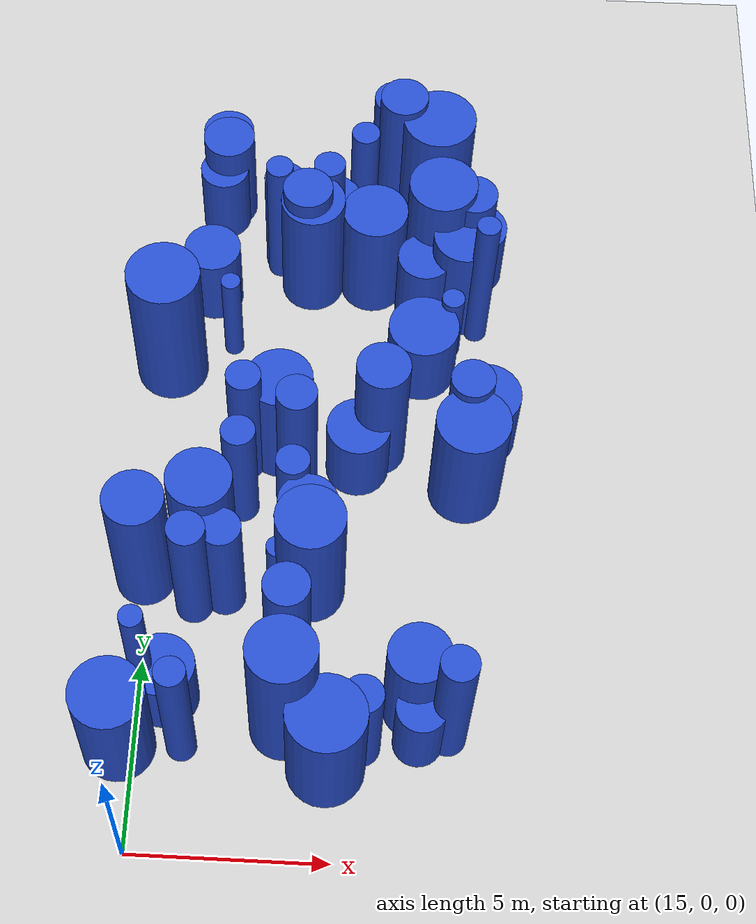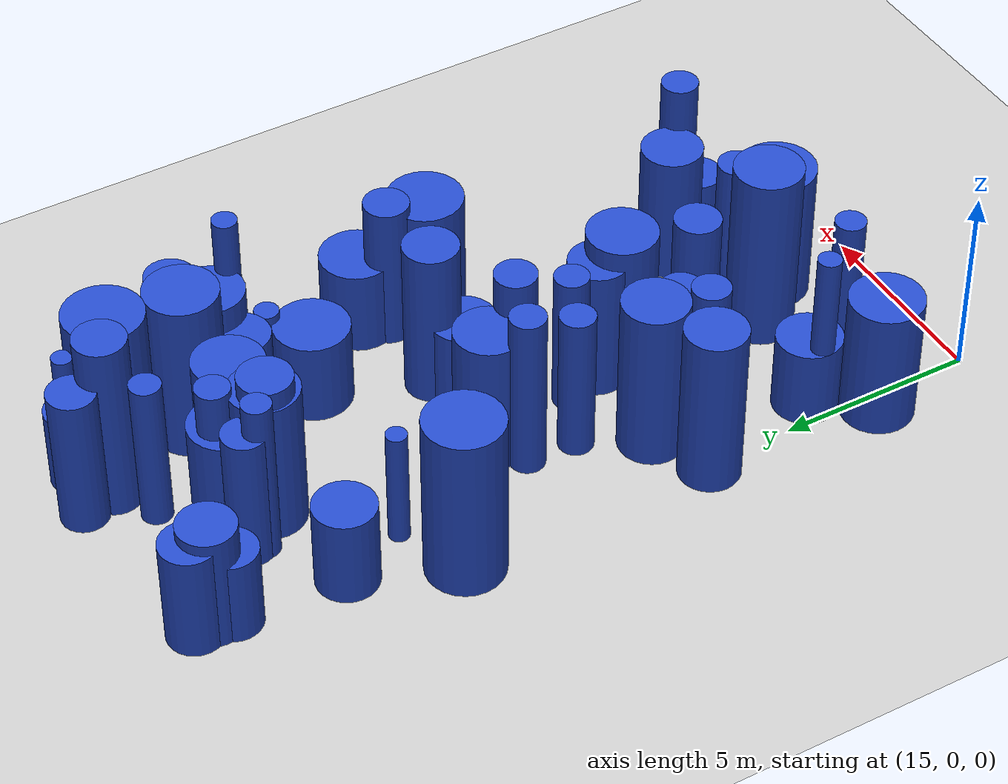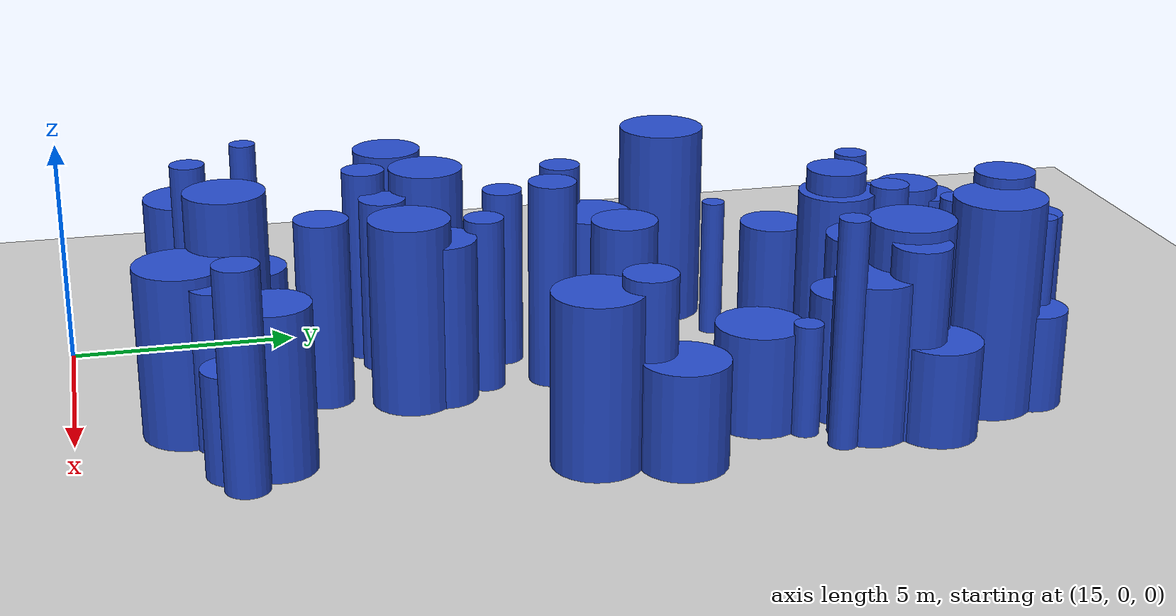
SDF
<sdf version="1.6">
 <world name="default">
  <model name="ground_plane">
   <static>1</static>
   <link name="link">
    <collision name="collision">
     <geometry><plane><normal>0 0 1</normal><size>100 100</size></plane></geometry>
     <surface><friction><ode><mu>100</mu><mu2>50</mu2></ode></friction></surface>
    </collision>
    <visual name="visual">
     <cast_shadows>0</cast_shadows>
     <geometry><plane><normal>0 0 1</normal><size>100 100</size></plane></geometry>
     <material>
      <script><uri>file://media/materials/scripts/gazebo.material</uri><name>Gazebo/Grey</name></script>
     </material>
    </visual>
   </link>
  </model>
  <model name="1">
   <static>0</static>
   <link name="link">
    <inertial>
     <mass>2</mass>
     <inertia>
      <ixx>1.04273</ixx>
      <ixy>0</ixy>
      <ixz>0</ixz>
      <iyy>1.04273</iyy>
      <iyz>0</iyz>
      <izz>0.0959348</izz>
     </inertia>
    </inertial>
    <collision name="collision">
     <geometry><cylinder><length>2.44307</length><radius>0.309734</radius></cylinder></geometry>
     <surface><contact><collide_without_contact>1</collide_without_contact></contact></surface>
    </collision>
    <visual name="visual">
     <geometry><cylinder><length>2.44307</length><radius>0.309734</radius></cylinder></geometry>
     <material>
      <script><uri>file://media/materials/scripts/gazebo.material</uri><name>Gazebo/Blue</name></script>
     </material>
    </visual>
    <gravity>0</gravity>
   </link>
   <pose>22.6289 14.9061 1.22153 0 -0 0</pose>
  </model>
  <model name="2">
   <static>0</static>
   <link name="link">
    <inertial>
     <mass>2</mass>
     <inertia><ixx>2.4592</ixx><ixy>0</ixy><ixz>0</ixz><iyy>2.4592</iyy><iyz>0</iyz><izz>0.847323</izz></inertia>
    </inertial>
    <collision name="collision">
     <geometry><cylinder><length>3.49474</length><radius>0.920501</radius></cylinder></geometry>
     <surface><contact><collide_without_contact>1</collide_without_contact></contact></surface>
    </collision>
    <visual name="visual">
     <geometry><cylinder><length>3.49474</length><radius>0.920501</radius></cylinder></geometry>
     <material>
      <script><uri>file://media/materials/scripts/gazebo.material</uri><name>Gazebo/Blue</name></script>
     </material>
    </visual>
    <gravity>0</gravity>
   </link>
   <pose>14.6339 2.72103 1.74737 0 -0 0</pose>
  </model>
  <model name="17">
   <static>0</static>
   <link name="link">
    <inertial>
     <mass>2</mass>
     <inertia><ixx>2.1683</ixx><ixy>0</ixy><ixz>0</ixz><iyy>2.1683</iyy><iyz>0</iyz><izz>0.244924</izz></inertia>
    </inertial>
    <collision name="collision">
     <geometry><cylinder><length>3.50357</length><radius>0.494898</radius></cylinder></geometry>
     <surface><contact><collide_without_contact>1</collide_without_contact></contact></surface>
    </collision>
    <visual name="visual">
     <geometry><cylinder><length>3.50357</length><radius>0.494898</radius></cylinder></geometry>
     <material>
      <script><uri>file://media/materials/scripts/gazebo.material</uri><name>Gazebo/Blue</name></script>
     </material>
    </visual>
    <gravity>0</gravity>
   </link>
   <pose>20.5912 2.97204 1.75179 0 -0 0</pose>
  </model>
  <model name="28">
   <static>0</static>
   <link name="link">
    <inertial>
     <mass>2</mass>
     <inertia><ixx>4.33046</ixx><ixy>0</ixy><ixz>0</ixz><iyy>4.33046</iyy><iyz>0</iyz><izz>0.751665</izz></inertia>
    </inertial>
    <collision name="collision">
     <geometry><cylinder><length>4.87112</length><radius>0.866986</radius></cylinder></geometry>
     <surface><contact><collide_without_contact>1</collide_without_contact></contact></surface>
    </collision>
    <visual name="visual">
     <geometry><cylinder><length>4.87112</length><radius>0.866986</radius></cylinder></geometry>
     <material>
      <script><uri>file://media/materials/scripts/gazebo.material</uri><name>Gazebo/Blue</name></script>
     </material>
    </visual>
    <gravity>0</gravity>
   </link>
   <pose>18.6765 3.41081 2.43556 0 -0 0</pose>
  </model>
  <model name="36">
   <static>0</static>
   <link name="link">
    <inertial>
     <mass>2</mass>
     <inertia><ixx>2.47359</ixx><ixy>0</ixy><ixz>0</ixz><iyy>2.47359</iyy><iyz>0</iyz><izz>0.571806</izz></inertia>
    </inertial>
    <collision name="collision">
     <geometry><cylinder><length>3.623</length><radius>0.756179</radius></cylinder></geometry>
     <surface><contact><collide_without_contact>1</collide_without_contact></contact></surface>
    </collision>
    <visual name="visual">
     <geometry><cylinder><length>3.623</length><radius>0.756179</radius></cylinder></geometry>
     <material>
      <script><uri>file://media/materials/scripts/gazebo.material</uri><name>Gazebo/Blue</name></script>
     </material>
    </visual>
    <gravity>0</gravity>
   </link>
   <pose>19.0534 7.89403 1.8115 0 -0 0</pose>
  </model>
  <model name="46">
   <static>0</static>
   <link name="link">
    <inertial>
     <mass>2</mass>
     <inertia><ixx>4.24125</ixx><ixy>0</ixy><ixz>0</ixz><iyy>4.24125</iyy><iyz>0</iyz><izz>0.418546</izz></inertia>
    </inertial>
    <collision name="collision">
     <geometry><cylinder><length>4.91852</length><radius>0.646951</radius></cylinder></geometry>
     <surface><contact><collide_without_contact>1</collide_without_contact></contact></surface>
    </collision>
    <visual name="visual">
     <geometry><cylinder><length>4.91852</length><radius>0.646951</radius></cylinder></geometry>
     <material>
      <script><uri>file://media/materials/scripts/gazebo.material</uri><name>Gazebo/Blue</name></script>
     </material>
    </visual>
    <gravity>0</gravity>
   </link>
   <pose>21.0936 19.7391 2.45926 0 -0 0</pose>
  </model>
  <model name="48">
   <static>0</static>
   <link name="link">
    <inertial>
     <mass>2</mass>
     <inertia><ixx>3.38207</ixx><ixy>0</ixy><ixz>0</ixz><iyy>3.38207</iyy><iyz>0</iyz><izz>0.486769</izz></inertia>
    </inertial>
    <collision name="collision">
     <geometry><cylinder><length>4.3396</length><radius>0.697689</radius></cylinder></geometry>
     <surface><contact><collide_without_contact>1</collide_without_contact></contact></surface>
    </collision>
    <visual name="visual">
     <geometry><cylinder><length>4.3396</length><radius>0.697689</radius></cylinder></geometry>
     <material>
      <script><uri>file://media/materials/scripts/gazebo.material</uri><name>Gazebo/Blue</name></script>
     </material>
    </visual>
    <gravity>0</gravity>
   </link>
   <pose>20.7865 11.4476 2.1698 0 -0 0</pose>
  </model>
  <model name="78">
   <static>0</static>
   <link name="link">
    <inertial>
     <mass>2</mass>
     <inertia>
      <ixx>1.00668</ixx>
      <ixy>0</ixy>
      <ixz>0</ixz>
      <iyy>1.00668</iyy>
      <iyz>0</iyz>
      <izz>0.0862787</izz>
     </inertia>
    </inertial>
    <collision name="collision">
     <geometry><cylinder><length>2.40442</length><radius>0.293732</radius></cylinder></geometry>
     <surface><contact><collide_without_contact>1</collide_without_contact></contact></surface>
    </collision>
    <visual name="visual">
     <geometry><cylinder><length>2.40442</length><radius>0.293732</radius></cylinder></geometry>
     <material>
      <script><uri>file://media/materials/scripts/gazebo.material</uri><name>Gazebo/Blue</name></script>
     </material>
    </visual>
    <gravity>0</gravity>
   </link>
   <pose>18.3294 7.23147 1.20221 0 -0 0</pose>
  </model>
  <model name="84">
   <static>0</static>
   <link name="link">
    <inertial>
     <mass>2</mass>
     <inertia><ixx>3.64044</ixx><ixy>0</ixy><ixz>0</ixz><iyy>3.64044</iyy><iyz>0</iyz><izz>0.277497</izz></inertia>
    </inertial>
    <collision name="collision">
     <geometry><cylinder><length>4.58368</length><radius>0.52678</radius></cylinder></geometry>
     <surface><contact><collide_without_contact>1</collide_without_contact></contact></surface>
    </collision>
    <visual name="visual">
     <geometry><cylinder><length>4.58368</length><radius>0.52678</radius></cylinder></geometry>
     <material>
      <script><uri>file://media/materials/scripts/gazebo.material</uri><name>Gazebo/Blue</name></script>
     </material>
    </visual>
    <gravity>0</gravity>
   </link>
   <pose>18.6475 10.4009 2.29184 0 -0 0</pose>
  </model>
  <model name="89">
   <static>0</static>
   <link name="link">
    <inertial>
     <mass>2</mass>
     <inertia><ixx>2.96796</ixx><ixy>0</ixy><ixz>0</ixz><iyy>2.96796</iyy><iyz>0</iyz><izz>0.745612</izz></inertia>
    </inertial>
    <collision name="collision">
     <geometry><cylinder><length>3.946</length><radius>0.863488</radius></cylinder></geometry>
     <surface><contact><collide_without_contact>1</collide_without_contact></contact></surface>
    </collision>
    <visual name="visual">
     <geometry><cylinder><length>3.946</length><radius>0.863488</radius></cylinder></geometry>
     <material>
      <script><uri>file://media/materials/scripts/gazebo.material</uri><name>Gazebo/Blue</name></script>
     </material>
    </visual>
    <gravity>0</gravity>
   </link>
   <pose>18.7498 16.8816 1.973 0 -0 0</pose>
  </model>
  <model name="102">
   <static>0</static>
   <link name="link">
    <inertial>
     <mass>2</mass>
     <inertia><ixx>3.54806</ixx><ixy>0</ixy><ixz>0</ixz><iyy>3.54806</iyy><iyz>0</iyz><izz>0.691929</izz></inertia>
    </inertial>
    <collision name="collision">
     <geometry><cylinder><length>4.38322</length><radius>0.831823</radius></cylinder></geometry>
     <surface><contact><collide_without_contact>1</collide_without_contact></contact></surface>
    </collision>
    <visual name="visual">
     <geometry><cylinder><length>4.38322</length><radius>0.831823</radius></cylinder></geometry>
     <material>
      <script><uri>file://media/materials/scripts/gazebo.material</uri><name>Gazebo/Blue</name></script>
     </material>
    </visual>
    <gravity>0</gravity>
   </link>
   <pose>16.3981 7.99857 2.19161 0 -0 0</pose>
  </model>
  <model name="109">
   <static>0</static>
   <link name="link">
    <inertial>
     <mass>2</mass>
     <inertia><ixx>2.37827</ixx><ixy>0</ixy><ixz>0</ixz><iyy>2.37827</iyy><iyz>0</iyz><izz>0.30273</izz></inertia>
    </inertial>
    <collision name="collision">
     <geometry><cylinder><length>3.65533</length><radius>0.550209</radius></cylinder></geometry>
     <surface><contact><collide_without_contact>1</collide_without_contact></contact></surface>
    </collision>
    <visual name="visual">
     <geometry><cylinder><length>3.65533</length><radius>0.550209</radius></cylinder></geometry>
     <material>
      <script><uri>file://media/materials/scripts/gazebo.material</uri><name>Gazebo/Blue</name></script>
     </material>
    </visual>
    <gravity>0</gravity>
   </link>
   <pose>17.9244 17.8043 1.82767 0 -0 0</pose>
  </model>
  <model name="116">
   <static>0</static>
   <link name="link">
    <inertial>
     <mass>2</mass>
     <inertia><ixx>3.48936</ixx><ixy>0</ixy><ixz>0</ixz><iyy>3.48936</iyy><iyz>0</iyz><izz>0.443704</izz></inertia>
    </inertial>
    <collision name="collision">
     <geometry><cylinder><length>4.42776</length><radius>0.666111</radius></cylinder></geometry>
     <surface><contact><collide_without_contact>1</collide_without_contact></contact></surface>
    </collision>
    <visual name="visual">
     <geometry><cylinder><length>4.42776</length><radius>0.666111</radius></cylinder></geometry>
     <material>
      <script><uri>file://media/materials/scripts/gazebo.material</uri><name>Gazebo/Blue</name></script>
     </material>
    </visual>
    <gravity>0</gravity>
   </link>
   <pose>18.6073 16.8956 2.21388 0 -0 0</pose>
  </model>
  <model name="131">
   <static>0</static>
   <link name="link">
    <inertial>
     <mass>2</mass>
     <inertia><ixx>3.06232</ixx><ixy>0</ixy><ixz>0</ixz><iyy>3.06232</iyy><iyz>0</iyz><izz>0.387296</izz></inertia>
    </inertial>
    <collision name="collision">
     <geometry><cylinder><length>4.14874</length><radius>0.622331</radius></cylinder></geometry>
     <surface><contact><collide_without_contact>1</collide_without_contact></contact></surface>
    </collision>
    <visual name="visual">
     <geometry><cylinder><length>4.14874</length><radius>0.622331</radius></cylinder></geometry>
     <material>
      <script><uri>file://media/materials/scripts/gazebo.material</uri><name>Gazebo/Blue</name></script>
     </material>
    </visual>
    <gravity>0</gravity>
   </link>
   <pose>23.0565 17.1107 2.07437 0 -0 0</pose>
  </model>
  <model name="135">
   <static>0</static>
   <link name="link">
    <inertial>
     <mass>2</mass>
     <inertia><ixx>3.25624</ixx><ixy>0</ixy><ixz>0</ixz><iyy>3.25624</iyy><iyz>0</iyz><izz>0.78546</izz></inertia>
    </inertial>
    <collision name="collision">
     <geometry><cylinder><length>4.14501</length><radius>0.886262</radius></cylinder></geometry>
     <surface><contact><collide_without_contact>1</collide_without_contact></contact></surface>
    </collision>
    <visual name="visual">
     <geometry><cylinder><length>4.14501</length><radius>0.886262</radius></cylinder></geometry>
     <material>
      <script><uri>file://media/materials/scripts/gazebo.material</uri><name>Gazebo/Blue</name></script>
     </material>
    </visual>
    <gravity>0</gravity>
   </link>
   <pose>19.1514 7.19176 2.0725 0 -0 0</pose>
  </model>
  <model name="146">
   <static>0</static>
   <link name="link">
    <inertial>
     <mass>2</mass>
     <inertia><ixx>1.31435</ixx><ixy>0</ixy><ixz>0</ixz><iyy>1.31435</iyy><iyz>0</iyz><izz>0.872518</izz></inertia>
    </inertial>
    <collision name="collision">
     <geometry><cylinder><length>2.29533</length><radius>0.934087</radius></cylinder></geometry>
     <surface><contact><collide_without_contact>1</collide_without_contact></contact></surface>
    </collision>
    <visual name="visual">
     <geometry><cylinder><length>2.29533</length><radius>0.934087</radius></cylinder></geometry>
     <material>
      <script><uri>file://media/materials/scripts/gazebo.material</uri><name>Gazebo/Blue</name></script>
     </material>
    </visual>
    <gravity>0</gravity>
   </link>
   <pose>23.5244 12.0109 1.14766 0 -0 0</pose>
  </model>
  <model name="159">
   <static>0</static>
   <link name="link">
    <inertial>
     <mass>2</mass>
     <inertia><ixx>3.53942</ixx><ixy>0</ixy><ixz>0</ixz><iyy>3.53942</iyy><iyz>0</iyz><izz>0.596226</izz></inertia>
    </inertial>
    <collision name="collision">
     <geometry><cylinder><length>4.40997</length><radius>0.772157</radius></cylinder></geometry>
     <surface><contact><collide_without_contact>1</collide_without_contact></contact></surface>
    </collision>
    <visual name="visual">
     <geometry><cylinder><length>4.40997</length><radius>0.772157</radius></cylinder></geometry>
     <material>
      <script><uri>file://media/materials/scripts/gazebo.material</uri><name>Gazebo/Blue</name></script>
     </material>
    </visual>
    <gravity>0</gravity>
   </link>
   <pose>14.8704 7.34621 2.20499 0 -0 0</pose>
  </model>
  <model name="162">
   <static>0</static>
   <link name="link">
    <inertial>
     <mass>2</mass>
     <inertia><ixx>2.99816</ixx><ixy>0</ixy><ixz>0</ixz><iyy>2.99816</iyy><iyz>0</iyz><izz>0.344422</izz></inertia>
    </inertial>
    <collision name="collision">
     <geometry><cylinder><length>4.11773</length><radius>0.586875</radius></cylinder></geometry>
     <surface><contact><collide_without_contact>1</collide_without_contact></contact></surface>
    </collision>
    <visual name="visual">
     <geometry><cylinder><length>4.11773</length><radius>0.586875</radius></cylinder></geometry>
     <material>
      <script><uri>file://media/materials/scripts/gazebo.material</uri><name>Gazebo/Blue</name></script>
     </material>
    </visual>
    <gravity>0</gravity>
   </link>
   <pose>18.6722 5.38973 2.05886 0 -0 0</pose>
  </model>
  <model name="184">
   <static>0</static>
   <link name="link">
    <inertial>
     <mass>2</mass>
     <inertia><ixx>3.81968</ixx><ixy>0</ixy><ixz>0</ixz><iyy>3.81968</iyy><iyz>0</iyz><izz>0.146862</izz></inertia>
    </inertial>
    <collision name="collision">
     <geometry><cylinder><length>4.74104</length><radius>0.383226</radius></cylinder></geometry>
     <surface><contact><collide_without_contact>1</collide_without_contact></contact></surface>
    </collision>
    <visual name="visual">
     <geometry><cylinder><length>4.74104</length><radius>0.383226</radius></cylinder></geometry>
     <material>
      <script><uri>file://media/materials/scripts/gazebo.material</uri><name>Gazebo/Blue</name></script>
     </material>
    </visual>
    <gravity>0</gravity>
   </link>
   <pose>16.1818 2.78422 2.37052 0 -0 0</pose>
  </model>
  <model name="185">
   <static>0</static>
   <link name="link">
    <inertial>
     <mass>2</mass>
     <inertia><ixx>3.27841</ixx><ixy>0</ixy><ixz>0</ixz><iyy>3.27841</iyy><iyz>0</iyz><izz>0.230123</izz></inertia>
    </inertial>
    <collision name="collision">
     <geometry><cylinder><length>4.35662</length><radius>0.479711</radius></cylinder></geometry>
     <surface><contact><collide_without_contact>1</collide_without_contact></contact></surface>
    </collision>
    <visual name="visual">
     <geometry><cylinder><length>4.35662</length><radius>0.479711</radius></cylinder></geometry>
     <material>
      <script><uri>file://media/materials/scripts/gazebo.material</uri><name>Gazebo/Blue</name></script>
     </material>
    </visual>
    <gravity>0</gravity>
   </link>
   <pose>16.1941 6.6207 2.17831 0 -0 0</pose>
  </model>
  <model name="197">
   <static>0</static>
   <link name="link">
    <inertial>
     <mass>2</mass>
     <inertia><ixx>2.40664</ixx><ixy>0</ixy><ixz>0</ixz><iyy>2.40664</iyy><iyz>0</iyz><izz>0.612438</izz></inertia>
    </inertial>
    <collision name="collision">
     <geometry><cylinder><length>3.55</length><radius>0.782584</radius></cylinder></geometry>
     <surface><contact><collide_without_contact>1</collide_without_contact></contact></surface>
    </collision>
    <visual name="visual">
     <geometry><cylinder><length>3.55</length><radius>0.782584</radius></cylinder></geometry>
     <material>
      <script><uri>file://media/materials/scripts/gazebo.material</uri><name>Gazebo/Blue</name></script>
     </material>
    </visual>
    <gravity>0</gravity>
   </link>
   <pose>21.8757 4.04784 1.775 0 -0 0</pose>
  </model>
  <model name="200">
   <static>0</static>
   <link name="link">
    <inertial>
     <mass>2</mass>
     <inertia><ixx>2.63983</ixx><ixy>0</ixy><ixz>0</ixz><iyy>2.63983</iyy><iyz>0</iyz><izz>0.354115</izz></inertia>
    </inertial>
    <collision name="collision">
     <geometry><cylinder><length>3.84404</length><radius>0.595075</radius></cylinder></geometry>
     <surface><contact><collide_without_contact>1</collide_without_contact></contact></surface>
    </collision>
    <visual name="visual">
     <geometry><cylinder><length>3.84404</length><radius>0.595075</radius></cylinder></geometry>
     <material>
      <script><uri>file://media/materials/scripts/gazebo.material</uri><name>Gazebo/Blue</name></script>
     </material>
    </visual>
    <gravity>0</gravity>
   </link>
   <pose>20.8837 20.6261 1.92202 0 -0 0</pose>
  </model>
  <model name="203">
   <static>0</static>
   <link name="link">
    <inertial>
     <mass>2</mass>
     <inertia><ixx>3.50185</ixx><ixy>0</ixy><ixz>0</ixz><iyy>3.50185</iyy><iyz>0</iyz><izz>0.202633</izz></inertia>
    </inertial>
    <collision name="collision">
     <geometry><cylinder><length>4.51699</length><radius>0.450148</radius></cylinder></geometry>
     <surface><contact><collide_without_contact>1</collide_without_contact></contact></surface>
    </collision>
    <visual name="visual">
     <geometry><cylinder><length>4.51699</length><radius>0.450148</radius></cylinder></geometry>
     <material>
      <script><uri>file://media/materials/scripts/gazebo.material</uri><name>Gazebo/Blue</name></script>
     </material>
    </visual>
    <gravity>0</gravity>
   </link>
   <pose>17.2866 10.877 2.2585 0 -0 0</pose>
  </model>
  <model name="211">
   <static>0</static>
   <link name="link">
    <inertial>
     <mass>2</mass>
     <inertia><ixx>2.75737</ixx><ixy>0</ixy><ixz>0</ixz><iyy>2.75737</iyy><iyz>0</iyz><izz>0.919582</izz></inertia>
    </inertial>
    <collision name="collision">
     <geometry><cylinder><length>3.71288</length><radius>0.958948</radius></cylinder></geometry>
     <surface><contact><collide_without_contact>1</collide_without_contact></contact></surface>
    </collision>
    <visual name="visual">
     <geometry><cylinder><length>3.71288</length><radius>0.958948</radius></cylinder></geometry>
     <material>
      <script><uri>file://media/materials/scripts/gazebo.material</uri><name>Gazebo/Blue</name></script>
     </material>
    </visual>
    <gravity>0</gravity>
   </link>
   <pose>23.0966 10.3226 1.85644 0 -0 0</pose>
  </model>
  <model name="221">
   <static>0</static>
   <link name="link">
    <inertial>
     <mass>2</mass>
     <inertia><ixx>1.21578</ixx><ixy>0</ixy><ixz>0</ixz><iyy>1.21578</iyy><iyz>0</iyz><izz>0.593038</izz></inertia>
    </inertial>
    <collision name="collision">
     <geometry><cylinder><length>2.34852</length><radius>0.77009</radius></cylinder></geometry>
     <surface><contact><collide_without_contact>1</collide_without_contact></contact></surface>
    </collision>
    <visual name="visual">
     <geometry><cylinder><length>2.34852</length><radius>0.77009</radius></cylinder></geometry>
     <material>
      <script><uri>file://media/materials/scripts/gazebo.material</uri><name>Gazebo/Blue</name></script>
     </material>
    </visual>
    <gravity>0</gravity>
   </link>
   <pose>16.0104 16.3521 1.17426 0 -0 0</pose>
  </model>
  <model name="222">
   <static>0</static>
   <link name="link">
    <inertial>
     <mass>2</mass>
     <inertia><ixx>2.69581</ixx><ixy>0</ixy><ixz>0</ixz><iyy>2.69581</iyy><iyz>0</iyz><izz>0.271882</izz></inertia>
    </inertial>
    <collision name="collision">
     <geometry><cylinder><length>3.91908</length><radius>0.521424</radius></cylinder></geometry>
     <surface><contact><collide_without_contact>1</collide_without_contact></contact></surface>
    </collision>
    <visual name="visual">
     <geometry><cylinder><length>3.91908</length><radius>0.521424</radius></cylinder></geometry>
     <material>
      <script><uri>file://media/materials/scripts/gazebo.material</uri><name>Gazebo/Blue</name></script>
     </material>
    </visual>
    <gravity>0</gravity>
   </link>
   <pose>16.9786 6.92828 1.95954 0 -0 0</pose>
  </model>
  <model name="229">
   <static>0</static>
   <link name="link">
    <inertial>
     <mass>2</mass>
     <inertia><ixx>3.64642</ixx><ixy>0</ixy><ixz>0</ixz><iyy>3.64642</iyy><iyz>0</iyz><izz>0.841675</izz></inertia>
    </inertial>
    <collision name="collision">
     <geometry><cylinder><length>4.39926</length><radius>0.917428</radius></cylinder></geometry>
     <surface><contact><collide_without_contact>1</collide_without_contact></contact></surface>
    </collision>
    <visual name="visual">
     <geometry><cylinder><length>4.39926</length><radius>0.917428</radius></cylinder></geometry>
     <material>
      <script><uri>file://media/materials/scripts/gazebo.material</uri><name>Gazebo/Blue</name></script>
     </material>
    </visual>
    <gravity>0</gravity>
   </link>
   <pose>22.2146 17.2205 2.19963 0 -0 0</pose>
  </model>
  <model name="231">
   <static>0</static>
   <link name="link">
    <inertial>
     <mass>2</mass>
     <inertia><ixx>2.80087</ixx><ixy>0</ixy><ixz>0</ixz><iyy>2.80087</iyy><iyz>0</iyz><izz>0.964922</izz></inertia>
    </inertial>
    <collision name="collision">
     <geometry><cylinder><length>3.72967</length><radius>0.982305</radius></cylinder></geometry>
     <surface><contact><collide_without_contact>1</collide_without_contact></contact></surface>
    </collision>
    <visual name="visual">
     <geometry><cylinder><length>3.72967</length><radius>0.982305</radius></cylinder></geometry>
     <material>
      <script><uri>file://media/materials/scripts/gazebo.material</uri><name>Gazebo/Blue</name></script>
     </material>
    </visual>
    <gravity>0</gravity>
   </link>
   <pose>19.7493 2.37563 1.86484 0 -0 0</pose>
  </model>
  <model name="232">
   <static>0</static>
   <link name="link">
    <inertial>
     <mass>2</mass>
     <inertia><ixx>1.18005</ixx><ixy>0</ixy><ixz>0</ixz><iyy>1.18005</iyy><iyz>0</iyz><izz>0.704491</izz></inertia>
    </inertial>
    <collision name="collision">
     <geometry><cylinder><length>2.22864</length><radius>0.83934</radius></cylinder></geometry>
     <surface><contact><collide_without_contact>1</collide_without_contact></contact></surface>
    </collision>
    <visual name="visual">
     <geometry><cylinder><length>2.22864</length><radius>0.83934</radius></cylinder></geometry>
     <material>
      <script><uri>file://media/materials/scripts/gazebo.material</uri><name>Gazebo/Blue</name></script>
     </material>
    </visual>
    <gravity>0</gravity>
   </link>
   <pose>20.225 10.9114 1.11432 0 -0 0</pose>
  </model>
  <model name="234">
   <static>0</static>
   <link name="link">
    <inertial>
     <mass>2</mass>
     <inertia><ixx>2.80496</ixx><ixy>0</ixy><ixz>0</ixz><iyy>2.80496</iyy><iyz>0</iyz><izz>0.14818</izz></inertia>
    </inertial>
    <collision name="collision">
     <geometry><cylinder><length>4.04787</length><radius>0.384941</radius></cylinder></geometry>
     <surface><contact><collide_without_contact>1</collide_without_contact></contact></surface>
    </collision>
    <visual name="visual">
     <geometry><cylinder><length>4.04787</length><radius>0.384941</radius></cylinder></geometry>
     <material>
      <script><uri>file://media/materials/scripts/gazebo.material</uri><name>Gazebo/Blue</name></script>
     </material>
    </visual>
    <gravity>0</gravity>
   </link>
   <pose>20.0865 19.1662 2.02393 0 -0 0</pose>
  </model>
  <model name="239">
   <static>0</static>
   <link name="link">
    <inertial>
     <mass>2</mass>
     <inertia><ixx>1.81074</ixx><ixy>0</ixy><ixz>0</ixz><iyy>1.81074</iyy><iyz>0</iyz><izz>0.834126</izz></inertia>
    </inertial>
    <collision name="collision">
     <geometry><cylinder><length>2.89172</length><radius>0.913305</radius></cylinder></geometry>
     <surface><contact><collide_without_contact>1</collide_without_contact></contact></surface>
    </collision>
    <visual name="visual">
     <geometry><cylinder><length>2.89172</length><radius>0.913305</radius></cylinder></geometry>
     <material>
      <script><uri>file://media/materials/scripts/gazebo.material</uri><name>Gazebo/Blue</name></script>
     </material>
    </visual>
    <gravity>0</gravity>
   </link>
   <pose>19.1789 17.686 1.44586 0 -0 0</pose>
  </model>
  <model name="244">
   <static>0</static>
   <link name="link">
    <inertial>
     <mass>2</mass>
     <inertia>
      <ixx>3.94036</ixx>
      <ixy>0</ixy>
      <ixz>0</ixz>
      <iyy>3.94036</iyy>
      <iyz>0</iyz>
      <izz>0.0854119</izz>
     </inertia>
    </inertial>
    <collision name="collision">
     <geometry><cylinder><length>4.8359</length><radius>0.292253</radius></cylinder></geometry>
     <surface><contact><collide_without_contact>1</collide_without_contact></contact></surface>
    </collision>
    <visual name="visual">
     <geometry><cylinder><length>4.8359</length><radius>0.292253</radius></cylinder></geometry>
     <material>
      <script><uri>file://media/materials/scripts/gazebo.material</uri><name>Gazebo/Blue</name></script>
     </material>
    </visual>
    <gravity>0</gravity>
   </link>
   <pose>15.1859 4.06259 2.41795 0 -0 0</pose>
  </model>
  <model name="261">
   <static>0</static>
   <link name="link">
    <inertial>
     <mass>2</mass>
     <inertia><ixx>2.39094</ixx><ixy>0</ixy><ixz>0</ixz><iyy>2.39094</iyy><iyz>0</iyz><izz>0.740881</izz></inertia>
    </inertial>
    <collision name="collision">
     <geometry><cylinder><length>3.48181</length><radius>0.860744</radius></cylinder></geometry>
     <surface><contact><collide_without_contact>1</collide_without_contact></contact></surface>
    </collision>
    <visual name="visual">
     <geometry><cylinder><length>3.48181</length><radius>0.860744</radius></cylinder></geometry>
     <material>
      <script><uri>file://media/materials/scripts/gazebo.material</uri><name>Gazebo/Blue</name></script>
     </material>
    </visual>
    <gravity>0</gravity>
   </link>
   <pose>22.8787 16.2167 1.74091 0 -0 0</pose>
  </model>
  <model name="263">
   <static>0</static>
   <link name="link">
    <inertial>
     <mass>2</mass>
     <inertia><ixx>3.93842</ixx><ixy>0</ixy><ixz>0</ixz><iyy>3.93842</iyy><iyz>0</iyz><izz>0.948666</izz></inertia>
    </inertial>
    <collision name="collision">
     <geometry><cylinder><length>4.559</length><radius>0.973995</radius></cylinder></geometry>
     <surface><contact><collide_without_contact>1</collide_without_contact></contact></surface>
    </collision>
    <visual name="visual">
     <geometry><cylinder><length>4.559</length><radius>0.973995</radius></cylinder></geometry>
     <material>
      <script><uri>file://media/materials/scripts/gazebo.material</uri><name>Gazebo/Blue</name></script>
     </material>
    </visual>
    <gravity>0</gravity>
   </link>
   <pose>15.01 13.8462 2.2795 0 -0 0</pose>
  </model>
  <model name="278">
   <static>0</static>
   <link name="link">
    <inertial>
     <mass>2</mass>
     <inertia>
      <ixx>2.78182</ixx>
      <ixy>0</ixy>
      <ixz>0</ixz>
      <iyy>2.78182</iyy>
      <iyz>0</iyz>
      <izz>0.0656007</izz>
     </inertia>
    </inertial>
    <collision name="collision">
     <geometry><cylinder><length>4.0613</length><radius>0.256126</radius></cylinder></geometry>
     <surface><contact><collide_without_contact>1</collide_without_contact></contact></surface>
    </collision>
    <visual name="visual">
     <geometry><cylinder><length>4.0613</length><radius>0.256126</radius></cylinder></geometry>
     <material>
      <script><uri>file://media/materials/scripts/gazebo.material</uri><name>Gazebo/Blue</name></script>
     </material>
    </visual>
    <gravity>0</gravity>
   </link>
   <pose>21.823 20.402 2.03065 0 -0 0</pose>
  </model>
  <model name="288">
   <static>0</static>
   <link name="link">
    <inertial>
     <mass>2</mass>
     <inertia><ixx>2.42122</ixx><ixy>0</ixy><ixz>0</ixz><iyy>2.42122</iyy><iyz>0</iyz><izz>0.7805</izz></inertia>
    </inertial>
    <collision name="collision">
     <geometry><cylinder><length>3.49082</length><radius>0.883459</radius></cylinder></geometry>
     <surface><contact><collide_without_contact>1</collide_without_contact></contact></surface>
    </collision>
    <visual name="visual">
     <geometry><cylinder><length>3.49082</length><radius>0.883459</radius></cylinder></geometry>
     <material>
      <script><uri>file://media/materials/scripts/gazebo.material</uri><name>Gazebo/Blue</name></script>
     </material>
    </visual>
    <gravity>0</gravity>
   </link>
   <pose>20.4344 16.9519 1.74541 0 -0 0</pose>
  </model>
  <model name="299">
   <static>0</static>
   <link name="link">
    <inertial>
     <mass>2</mass>
     <inertia><ixx>3.44872</ixx><ixy>0</ixy><ixz>0</ixz><iyy>3.44872</iyy><iyz>0</iyz><izz>0.131478</izz></inertia>
    </inertial>
    <collision name="collision">
     <geometry><cylinder><length>4.50532</length><radius>0.362599</radius></cylinder></geometry>
     <surface><contact><collide_without_contact>1</collide_without_contact></contact></surface>
    </collision>
    <visual name="visual">
     <geometry><cylinder><length>4.50532</length><radius>0.362599</radius></cylinder></geometry>
     <material>
      <script><uri>file://media/materials/scripts/gazebo.material</uri><name>Gazebo/Blue</name></script>
     </material>
    </visual>
    <gravity>0</gravity>
   </link>
   <pose>17.8163 17.5108 2.25266 0 -0 0</pose>
  </model>
  <model name="311">
   <static>0</static>
   <link name="link">
    <inertial>
     <mass>2</mass>
     <inertia>
      <ixx>0.915781</ixx>
      <ixy>0</ixy>
      <ixz>0</ixz>
      <iyy>0.915781</iyy>
      <iyz>0</iyz>
      <izz>0.242114</izz>
     </inertia>
    </inertial>
    <collision name="collision">
     <geometry><cylinder><length>2.18365</length><radius>0.492051</radius></cylinder></geometry>
     <surface><contact><collide_without_contact>1</collide_without_contact></contact></surface>
    </collision>
    <visual name="visual">
     <geometry><cylinder><length>2.18365</length><radius>0.492051</radius></cylinder></geometry>
     <material>
      <script><uri>file://media/materials/scripts/gazebo.material</uri><name>Gazebo/Blue</name></script>
     </material>
    </visual>
    <gravity>0</gravity>
   </link>
   <pose>18.5318 11.4707 1.09183 0 -0 0</pose>
  </model>
  <model name="322">
   <static>0</static>
   <link name="link">
    <inertial>
     <mass>2</mass>
     <inertia><ixx>2.60054</ixx><ixy>0</ixy><ixz>0</ixz><iyy>2.60054</iyy><iyz>0</iyz><izz>0.743721</izz></inertia>
    </inertial>
    <collision name="collision">
     <geometry><cylinder><length>3.65678</length><radius>0.862392</radius></cylinder></geometry>
     <surface><contact><collide_without_contact>1</collide_without_contact></contact></surface>
    </collision>
    <visual name="visual">
     <geometry><cylinder><length>3.65678</length><radius>0.862392</radius></cylinder></geometry>
     <material>
      <script><uri>file://media/materials/scripts/gazebo.material</uri><name>Gazebo/Blue</name></script>
     </material>
    </visual>
    <gravity>0</gravity>
   </link>
   <pose>18.1556 11.4009 1.82839 0 -0 0</pose>
  </model>
  <model name="328">
   <static>0</static>
   <link name="link">
    <inertial>
     <mass>2</mass>
     <inertia><ixx>2.81543</ixx><ixy>0</ixy><ixz>0</ixz><iyy>2.81543</iyy><iyz>0</iyz><izz>0.326545</izz></inertia>
    </inertial>
    <collision name="collision">
     <geometry><cylinder><length>3.9891</length><radius>0.571441</radius></cylinder></geometry>
     <surface><contact><collide_without_contact>1</collide_without_contact></contact></surface>
    </collision>
    <visual name="visual">
     <geometry><cylinder><length>3.9891</length><radius>0.571441</radius></cylinder></geometry>
     <material>
      <script><uri>file://media/materials/scripts/gazebo.material</uri><name>Gazebo/Blue</name></script>
     </material>
    </visual>
    <gravity>0</gravity>
   </link>
   <pose>23.0588 11.399 1.99455 0 -0 0</pose>
  </model>
  <model name="340">
   <static>0</static>
   <link name="link">
    <inertial>
     <mass>2</mass>
     <inertia><ixx>1.27556</ixx><ixy>0</ixy><ixz>0</ixz><iyy>1.27556</iyy><iyz>0</iyz><izz>0.901911</izz></inertia>
    </inertial>
    <collision name="collision">
     <geometry><cylinder><length>2.22432</length><radius>0.94969</radius></cylinder></geometry>
     <surface><contact><collide_without_contact>1</collide_without_contact></contact></surface>
    </collision>
    <visual name="visual">
     <geometry><cylinder><length>2.22432</length><radius>0.94969</radius></cylinder></geometry>
     <material>
      <script><uri>file://media/materials/scripts/gazebo.material</uri><name>Gazebo/Blue</name></script>
     </material>
    </visual>
    <gravity>0</gravity>
   </link>
   <pose>21.8627 14.1146 1.11216 0 -0 0</pose>
  </model>
  <model name="343">
   <static>0</static>
   <link name="link">
    <inertial>
     <mass>2</mass>
     <inertia><ixx>1.10577</ixx><ixy>0</ixy><ixz>0</ixz><iyy>1.10577</iyy><iyz>0</iyz><izz>0.453349</izz></inertia>
    </inertial>
    <collision name="collision">
     <geometry><cylinder><length>2.29664</length><radius>0.673312</radius></cylinder></geometry>
     <surface><contact><collide_without_contact>1</collide_without_contact></contact></surface>
    </collision>
    <visual name="visual">
     <geometry><cylinder><length>2.29664</length><radius>0.673312</radius></cylinder></geometry>
     <material>
      <script><uri>file://media/materials/scripts/gazebo.material</uri><name>Gazebo/Blue</name></script>
     </material>
    </visual>
    <gravity>0</gravity>
   </link>
   <pose>16.1395 19.1376 1.14832 0 -0 0</pose>
  </model>
  <model name="344">
   <static>0</static>
   <link name="link">
    <inertial>
     <mass>2</mass>
     <inertia><ixx>4.15109</ixx><ixy>0</ixy><ixz>0</ixz><iyy>4.15109</iyy><iyz>0</iyz><izz>0.972195</izz></inertia>
    </inertial>
    <collision name="collision">
     <geometry><cylinder><length>4.68934</length><radius>0.986</radius></cylinder></geometry>
     <surface><contact><collide_without_contact>1</collide_without_contact></contact></surface>
    </collision>
    <visual name="visual">
     <geometry><cylinder><length>4.68934</length><radius>0.986</radius></cylinder></geometry>
     <material>
      <script><uri>file://media/materials/scripts/gazebo.material</uri><name>Gazebo/Blue</name></script>
     </material>
    </visual>
    <gravity>0</gravity>
   </link>
   <pose>22.0644 19.2211 2.34467 0 -0 0</pose>
  </model>
  <model name="352">
   <static>0</static>
   <link name="link">
    <inertial>
     <mass>2</mass>
     <inertia><ixx>1.61205</ixx><ixy>0</ixy><ixz>0</ixz><iyy>1.61205</iyy><iyz>0</iyz><izz>0.490815</izz></inertia>
    </inertial>
    <collision name="collision">
     <geometry><cylinder><length>2.86354</length><radius>0.700582</radius></cylinder></geometry>
     <surface><contact><collide_without_contact>1</collide_without_contact></contact></surface>
    </collision>
    <visual name="visual">
     <geometry><cylinder><length>2.86354</length><radius>0.700582</radius></cylinder></geometry>
     <material>
      <script><uri>file://media/materials/scripts/gazebo.material</uri><name>Gazebo/Blue</name></script>
     </material>
    </visual>
    <gravity>0</gravity>
   </link>
   <pose>16.2168 20.0701 1.43177 0 -0 0</pose>
  </model>
  <model name="362">
   <static>0</static>
   <link name="link">
    <inertial>
     <mass>2</mass>
     <inertia><ixx>1.09804</ixx><ixy>0</ixy><ixz>0</ixz><iyy>1.09804</iyy><iyz>0</iyz><izz>0.754779</izz></inertia>
    </inertial>
    <collision name="collision">
     <geometry><cylinder><length>2.07939</length><radius>0.86878</radius></cylinder></geometry>
     <surface><contact><collide_without_contact>1</collide_without_contact></contact></surface>
    </collision>
    <visual name="visual">
     <geometry><cylinder><length>2.07939</length><radius>0.86878</radius></cylinder></geometry>
     <material>
      <script><uri>file://media/materials/scripts/gazebo.material</uri><name>Gazebo/Blue</name></script>
     </material>
    </visual>
    <gravity>0</gravity>
   </link>
   <pose>23.2456 17.5809 1.0397 0 -0 0</pose>
  </model>
  <model name="379">
   <static>0</static>
   <link name="link">
    <inertial>
     <mass>2</mass>
     <inertia><ixx>1.7059</ixx><ixy>0</ixy><ixz>0</ixz><iyy>1.7059</iyy><iyz>0</iyz><izz>0.0677408</izz></inertia>
    </inertial>
    <collision name="collision">
     <geometry><cylinder><length>3.16736</length><radius>0.260271</radius></cylinder></geometry>
     <surface><contact><collide_without_contact>1</collide_without_contact></contact></surface>
    </collision>
    <visual name="visual">
     <geometry><cylinder><length>3.16736</length><radius>0.260271</radius></cylinder></geometry>
     <material>
      <script><uri>file://media/materials/scripts/gazebo.material</uri><name>Gazebo/Blue</name></script>
     </material>
    </visual>
    <gravity>0</gravity>
   </link>
   <pose>16.6554 14.6642 1.58368 0 -0 0</pose>
  </model>
  <model name="385">
   <static>0</static>
   <link name="link">
    <inertial>
     <mass>2</mass>
     <inertia><ixx>1.58856</ixx><ixy>0</ixy><ixz>0</ixz><iyy>1.58856</iyy><iyz>0</iyz><izz>0.54734</izz></inertia>
    </inertial>
    <collision name="collision">
     <geometry><cylinder><length>2.80879</length><radius>0.739824</radius></cylinder></geometry>
     <surface><contact><collide_without_contact>1</collide_without_contact></contact></surface>
    </collision>
    <visual name="visual">
     <geometry><cylinder><length>2.80879</length><radius>0.739824</radius></cylinder></geometry>
     <material>
      <script><uri>file://media/materials/scripts/gazebo.material</uri><name>Gazebo/Blue</name></script>
     </material>
    </visual>
    <gravity>0</gravity>
   </link>
   <pose>21.8315 15.9799 1.4044 0 -0 0</pose>
  </model>
  <model name="386">
   <static>0</static>
   <link name="link">
    <inertial>
     <mass>2</mass>
     <inertia><ixx>1.01492</ixx><ixy>0</ixy><ixz>0</ixz><iyy>1.01492</iyy><iyz>0</iyz><izz>0.497375</izz></inertia>
    </inertial>
    <collision name="collision">
     <geometry><cylinder><length>2.14415</length><radius>0.705248</radius></cylinder></geometry>
     <surface><contact><collide_without_contact>1</collide_without_contact></contact></surface>
    </collision>
    <visual name="visual">
     <geometry><cylinder><length>2.14415</length><radius>0.705248</radius></cylinder></geometry>
     <material>
      <script><uri>file://media/materials/scripts/gazebo.material</uri><name>Gazebo/Blue</name></script>
     </material>
    </visual>
    <gravity>0</gravity>
   </link>
   <pose>22.1098 20.1861 1.07207 0 -0 0</pose>
  </model>
  <model name="400">
   <static>0</static>
   <link name="link">
    <inertial>
     <mass>2</mass>
     <inertia><ixx>1.91171</ixx><ixy>0</ixy><ixz>0</ixz><iyy>1.91171</iyy><iyz>0</iyz><izz>0.505133</izz></inertia>
    </inertial>
    <collision name="collision">
     <geometry><cylinder><length>3.15513</length><radius>0.710727</radius></cylinder></geometry>
     <surface><contact><collide_without_contact>1</collide_without_contact></contact></surface>
    </collision>
    <visual name="visual">
     <geometry><cylinder><length>3.15513</length><radius>0.710727</radius></cylinder></geometry>
     <material>
      <script><uri>file://media/materials/scripts/gazebo.material</uri><name>Gazebo/Blue</name></script>
     </material>
    </visual>
    <gravity>0</gravity>
   </link>
   <pose>16.2647 19.5926 1.57757 0 -0 0</pose>
  </model>
  <model name="404">
   <static>0</static>
   <link name="link">
    <inertial>
     <mass>2</mass>
     <inertia><ixx>1.07682</ixx><ixy>0</ixy><ixz>0</ixz><iyy>1.07682</iyy><iyz>0</iyz><izz>0.677446</izz></inertia>
    </inertial>
    <collision name="collision">
     <geometry><cylinder><length>2.10442</length><radius>0.823071</radius></cylinder></geometry>
     <surface><contact><collide_without_contact>1</collide_without_contact></contact></surface>
    </collision>
    <visual name="visual">
     <geometry><cylinder><length>2.10442</length><radius>0.823071</radius></cylinder></geometry>
     <material>
      <script><uri>file://media/materials/scripts/gazebo.material</uri><name>Gazebo/Blue</name></script>
     </material>
    </visual>
    <gravity>0</gravity>
   </link>
   <pose>15.7021 4.06905 1.05221 0 -0 0</pose>
  </model>
  <model name="414">
   <static>0</static>
   <link name="link">
    <inertial>
     <mass>2</mass>
     <inertia><ixx>1.08811</ixx><ixy>0</ixy><ixz>0</ixz><iyy>1.08811</iyy><iyz>0</iyz><izz>0.391272</izz></inertia>
    </inertial>
    <collision name="collision">
     <geometry><cylinder><length>2.31405</length><radius>0.625517</radius></cylinder></geometry>
     <surface><contact><collide_without_contact>1</collide_without_contact></contact></surface>
    </collision>
    <visual name="visual">
     <geometry><cylinder><length>2.31405</length><radius>0.625517</radius></cylinder></geometry>
     <material>
      <script><uri>file://media/materials/scripts/gazebo.material</uri><name>Gazebo/Blue</name></script>
     </material>
    </visual>
    <gravity>0</gravity>
   </link>
   <pose>21.9979 3.16894 1.15702 0 -0 0</pose>
  </model>
  <model name="415">
   <static>0</static>
   <link name="link">
    <inertial>
     <mass>2</mass>
     <inertia><ixx>2.59321</ixx><ixy>0</ixy><ixz>0</ixz><iyy>2.59321</iyy><iyz>0</iyz><izz>0.188936</izz></inertia>
    </inertial>
    <collision name="collision">
     <geometry><cylinder><length>3.87201</length><radius>0.434667</radius></cylinder></geometry>
     <surface><contact><collide_without_contact>1</collide_without_contact></contact></surface>
    </collision>
    <visual name="visual">
     <geometry><cylinder><length>3.87201</length><radius>0.434667</radius></cylinder></geometry>
     <material>
      <script><uri>file://media/materials/scripts/gazebo.material</uri><name>Gazebo/Blue</name></script>
     </material>
    </visual>
    <gravity>0</gravity>
   </link>
   <pose>18.6344 8.89238 1.936 0 -0 0</pose>
  </model>
  <model name="418">
   <static>0</static>
   <link name="link">
    <inertial>
     <mass>2</mass>
     <inertia><ixx>2.94748</ixx><ixy>0</ixy><ixz>0</ixz><iyy>2.94748</iyy><iyz>0</iyz><izz>0.18313</izz></inertia>
    </inertial>
    <collision name="collision">
     <geometry><cylinder><length>4.1395</length><radius>0.427936</radius></cylinder></geometry>
     <surface><contact><collide_without_contact>1</collide_without_contact></contact></surface>
    </collision>
    <visual name="visual">
     <geometry><cylinder><length>4.1395</length><radius>0.427936</radius></cylinder></geometry>
     <material>
      <script><uri>file://media/materials/scripts/gazebo.material</uri><name>Gazebo/Blue</name></script>
     </material>
    </visual>
    <gravity>0</gravity>
   </link>
   <pose>19.1435 17.9508 2.06975 0 -0 0</pose>
  </model>
  <model name="440">
   <static>0</static>
   <link name="link">
    <inertial>
     <mass>2</mass>
     <inertia><ixx>2.78443</ixx><ixy>0</ixy><ixz>0</ixz><iyy>2.78443</iyy><iyz>0</iyz><izz>0.19644</izz></inertia>
    </inertial>
    <collision name="collision">
     <geometry><cylinder><length>4.01463</length><radius>0.443215</radius></cylinder></geometry>
     <surface><contact><collide_without_contact>1</collide_without_contact></contact></surface>
    </collision>
    <visual name="visual">
     <geometry><cylinder><length>4.01463</length><radius>0.443215</radius></cylinder></geometry>
     <material>
      <script><uri>file://media/materials/scripts/gazebo.material</uri><name>Gazebo/Blue</name></script>
     </material>
    </visual>
    <gravity>0</gravity>
   </link>
   <pose>17.2294 9.57805 2.00731 0 -0 0</pose>
  </model>
  <model name="454">
   <static>0</static>
   <link name="link">
    <inertial>
     <mass>2</mass>
     <inertia><ixx>3.80994</ixx><ixy>0</ixy><ixz>0</ixz><iyy>3.80994</iyy><iyz>0</iyz><izz>0.217794</izz></inertia>
    </inertial>
    <collision name="collision">
     <geometry><cylinder><length>4.71235</length><radius>0.466684</radius></cylinder></geometry>
     <surface><contact><collide_without_contact>1</collide_without_contact></contact></surface>
    </collision>
    <visual name="visual">
     <geometry><cylinder><length>4.71235</length><radius>0.466684</radius></cylinder></geometry>
     <material>
      <script><uri>file://media/materials/scripts/gazebo.material</uri><name>Gazebo/Blue</name></script>
     </material>
    </visual>
    <gravity>0</gravity>
   </link>
   <pose>22.7332 3.32377 2.35618 0 -0 0</pose>
  </model>
  <model name="474">
   <static>0</static>
   <link name="link">
    <inertial>
     <mass>2</mass>
     <inertia>
      <ixx>4.10162</ixx>
      <ixy>0</ixy>
      <ixz>0</ixz>
      <iyy>4.10162</iyy>
      <iyz>0</iyz>
      <izz>0.0991653</izz>
     </inertia>
    </inertial>
    <collision name="collision">
     <geometry><cylinder><length>4.93074</length><radius>0.314905</radius></cylinder></geometry>
     <surface><contact><collide_without_contact>1</collide_without_contact></contact></surface>
    </collision>
    <visual name="visual">
     <geometry><cylinder><length>4.93074</length><radius>0.314905</radius></cylinder></geometry>
     <material>
      <script><uri>file://media/materials/scripts/gazebo.material</uri><name>Gazebo/Blue</name></script>
     </material>
    </visual>
    <gravity>0</gravity>
   </link>
   <pose>23.3735 15.4875 2.46537 0 -0 0</pose>
  </model>
 </world>
</sdf>
